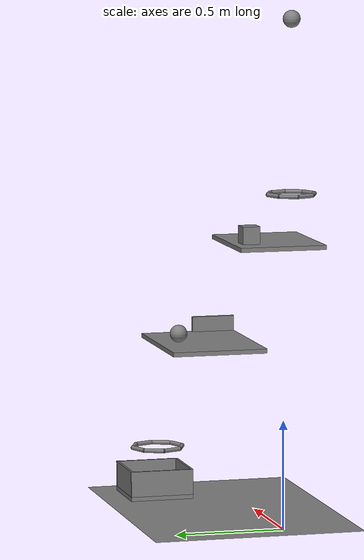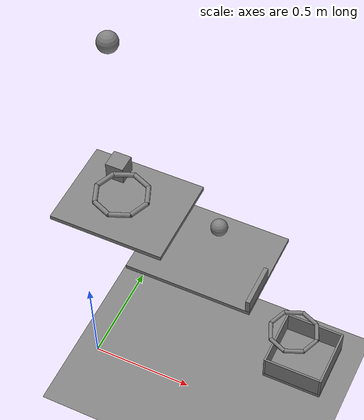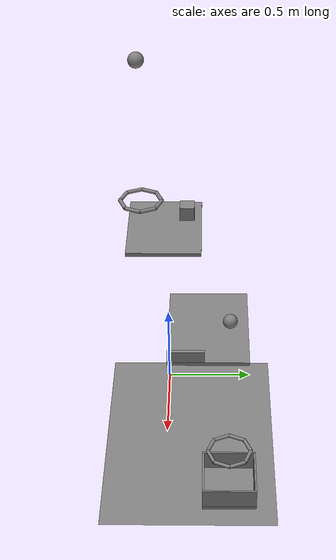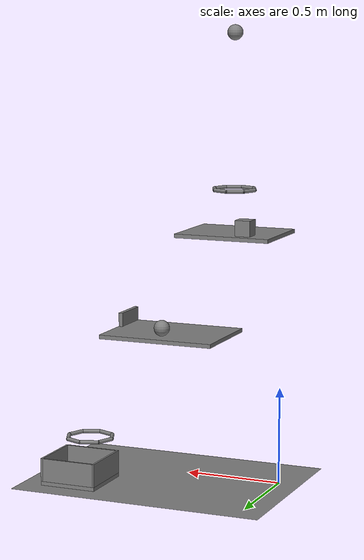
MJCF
<mujoco model="trapdoor_chain">
  <option timestep="0.002"/>
  <worldbody>
    <light name="light" pos="0.5 0 3" dir="0 0 -1"/>
    <geom name="floor" type="plane" size="3 3 0.1" pos="0 0 0"/>

    <body name="hoop1" pos="0.3 -0.12 1.494">
      <geom name="hoop1_s0" type="capsule" size="0.01" fromto="0.11 0 0 0.0778 0.0778 0"/>
      <geom name="hoop1_s1" type="capsule" size="0.01" fromto="0.0778 0.0778 0 0 0.11 0"/>
      <geom name="hoop1_s2" type="capsule" size="0.01" fromto="0 0.11 0 -0.0778 0.0778 0"/>
      <geom name="hoop1_s3" type="capsule" size="0.01" fromto="-0.0778 0.0778 0 -0.11 0 0"/>
      <geom name="hoop1_s4" type="capsule" size="0.01" fromto="-0.11 0 0 -0.0778 -0.0778 0"/>
      <geom name="hoop1_s5" type="capsule" size="0.01" fromto="-0.0778 -0.0778 0 0 -0.11 0"/>
      <geom name="hoop1_s6" type="capsule" size="0.01" fromto="0 -0.11 0 0.0778 -0.0778 0"/>
      <geom name="hoop1_s7" type="capsule" size="0.01" fromto="0.0778 -0.0778 0 0.11 0 0"/>
    </body>

    <body name="ball1" pos="0.3 -0.12 2.294">
      <freejoint name="ball1_free"/>
      <geom name="ball1_geom" type="sphere" size="0.04" mass="0.5" condim="6" friction="0.8 0.005 0.004"/>
    </body>

    <body name="flap1" pos="0 0 1.294">
      <joint name="flap1_hinge" type="hinge" axis="0 1 0" pos="0 0 0" limited="true" range="0 0.61" frictionloss="1.5" damping="1.0"/>
      <geom name="flap1_plank" type="box" size="0.25 0.2 0.01" pos="0.25 0 -0.01" mass="0.3" friction="0.2 0.005 0.0001"/>
    </body>

    <body name="block" pos="0.15 0.12 1.334">
      <freejoint name="block_free"/>
      <geom name="block_geom" type="box" size="0.04 0.04 0.04" mass="0.2" friction="0.2 0.005 0.0001"/>
    </body>

    <body name="flap2" pos="0.2 0.24 0.8">
      <joint name="flap2_hinge" type="hinge" axis="0 1 0" pos="0 0 0" limited="true" range="0 0.61" frictionloss="1.6" damping="0.3"/>
      <geom name="flap2_plank" type="box" size="0.3 0.22 0.01" pos="0.3 0 -0.01" mass="0.3" friction="0.2 0.005 0.0001"/>
      <geom name="flap2_lip" type="box" size="0.01 0.1 0.035" pos="0.59 -0.12 0.035" mass="0.02" friction="0.2 0.005 0.0001"/>
    </body>

    <body name="ball2" pos="0.5 0.36 0.84">
      <freejoint name="ball2_free"/>
      <geom name="ball2_geom" type="sphere" size="0.04" mass="0.1" condim="6" friction="0.8 0.005 0.004"/>
    </body>

    <body name="hoop2" pos="0.9 0.36 0.24">
      <geom name="hoop2_s0" type="capsule" size="0.01" fromto="0.12 0 0 0.0849 0.0849 0"/>
      <geom name="hoop2_s1" type="capsule" size="0.01" fromto="0.0849 0.0849 0 0 0.12 0"/>
      <geom name="hoop2_s2" type="capsule" size="0.01" fromto="0 0.12 0 -0.0849 0.0849 0"/>
      <geom name="hoop2_s3" type="capsule" size="0.01" fromto="-0.0849 0.0849 0 -0.12 0 0"/>
      <geom name="hoop2_s4" type="capsule" size="0.01" fromto="-0.12 0 0 -0.0849 -0.0849 0"/>
      <geom name="hoop2_s5" type="capsule" size="0.01" fromto="-0.0849 -0.0849 0 0 -0.12 0"/>
      <geom name="hoop2_s6" type="capsule" size="0.01" fromto="0 -0.12 0 0.0849 -0.0849 0"/>
      <geom name="hoop2_s7" type="capsule" size="0.01" fromto="0.0849 -0.0849 0 0.12 0 0"/>
    </body>

    <body name="cup" pos="0.96 0.36 0">
      <geom name="cup_bottom" type="box" size="0.15 0.15 0.01" pos="0 0 0.01" friction="0.8 0.005 0.004" condim="6"/>
      <geom name="cup_wall_px" type="box" size="0.005 0.15 0.06" pos="0.145 0 0.08"/>
      <geom name="cup_wall_nx" type="box" size="0.005 0.15 0.06" pos="-0.145 0 0.08"/>
      <geom name="cup_wall_py" type="box" size="0.14 0.005 0.06" pos="0 0.145 0.08"/>
      <geom name="cup_wall_ny" type="box" size="0.14 0.005 0.06" pos="0 -0.145 0.08"/>
    </body>
  </worldbody>
</mujoco>
